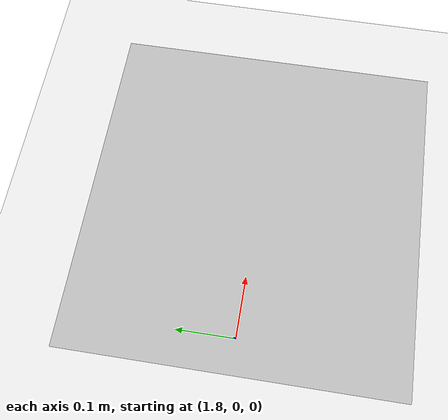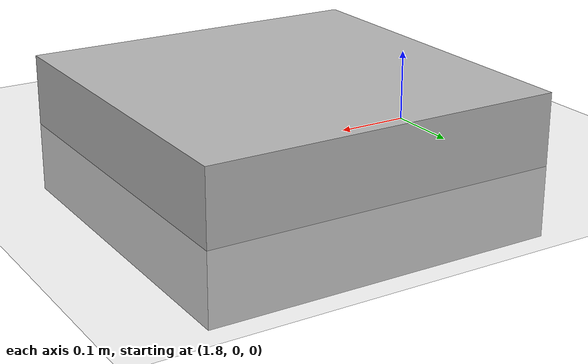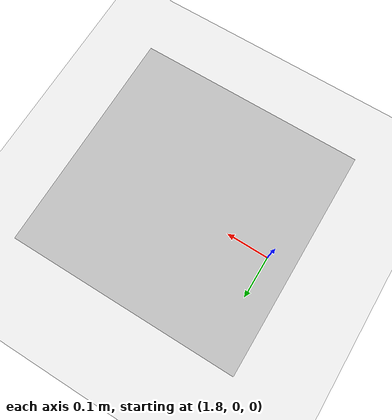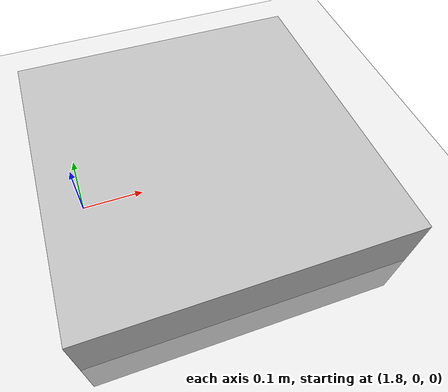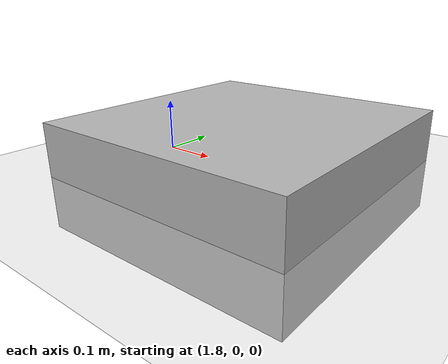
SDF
<?xml version="1.0" ?>
<sdf version="1.6">
  <world name="AI_Center3_windy">
    <include>
      <uri>model://ground_plane</uri>
    </include>
    <include>
      <uri>model://sun</uri>
    </include>

    <!-- Include the windy_box model to demonstrate per-link aerodynamics -->
    <include>
      <uri>file:///home/j/INCSL/IICC26_ws/drone_autonomous_landing/drone_ws/src/drone_description/models/windy_box/model.sdf</uri>
      <pose>2 0 0 0 0 0</pose>
    </include>

    <plugin name="wind_plugin" filename="/home/j/INCSL/IICC26_ws/drone_autonomous_landing/drone_ws/src/drone_description/plugins/libplugin_wind.so">
      <mean_wind>
        <x>1.5</x>
        <y>0.0</y>
        <z>0.0</z>
      </mean_wind>
      <gust_std>0.3</gust_std>
      <air_density>1.225</air_density>
      <drag_coef>1.0</drag_coef>
      <area>0.5</area>
      <update_rate>20.0</update_rate>
      <!-- per-model/per-link aerodynamics overrides -->
      <model_overrides>
        <model name="windy_box">
          <link name="body">
            <area>0.25</area>
            <drag_coef>1.05</drag_coef>
          </link>
        </model>
      </model_overrides>
    </plugin>
  </world>
</sdf>

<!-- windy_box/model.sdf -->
<sdf version='1.6'>
  <model name='windy_box'>
    <pose>0 0 0.5 0 0 0</pose>
    <link name='body'>
      <pose>0 0 0 0 0 0</pose>
      <inertial>
        <mass>1.0</mass>
        <inertia>
          <ixx>0.001</ixx>
          <iyy>0.001</iyy>
          <izz>0.001</izz>
        </inertia>
      </inertial>
      <collision name='collision'>
        <geometry>
          <box><size>0.5 0.5 0.2</size></box>
        </geometry>
      </collision>
      <visual name='visual'>
        <geometry>
          <box><size>0.5 0.5 0.2</size></box>
        </geometry>
      </visual>
      <!-- No custom aerodynamics here; per-link aerodynamics are provided in the world plugin's configuration -->
    </link>
  </model>
</sdf>
